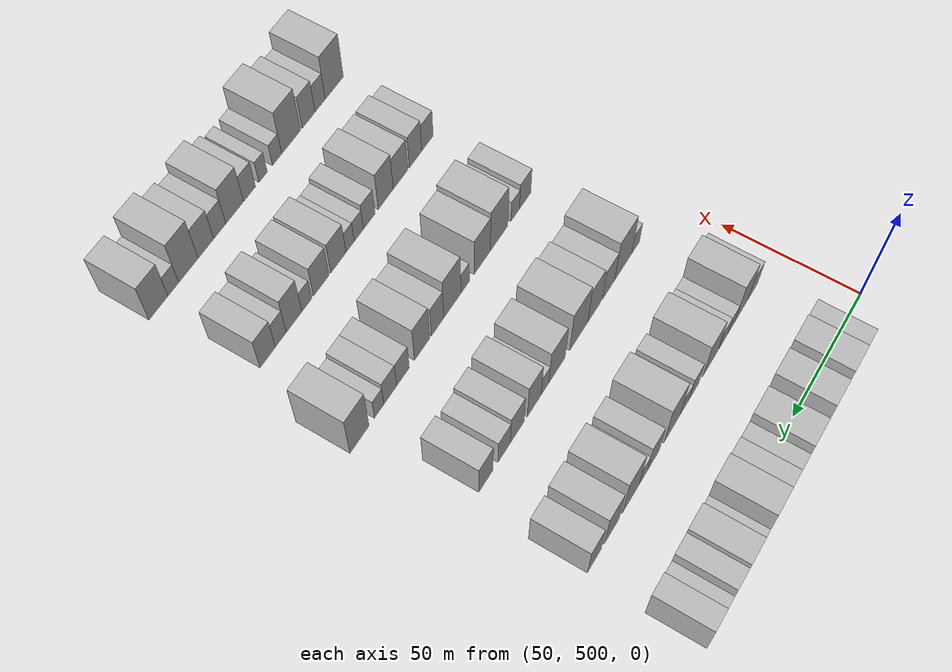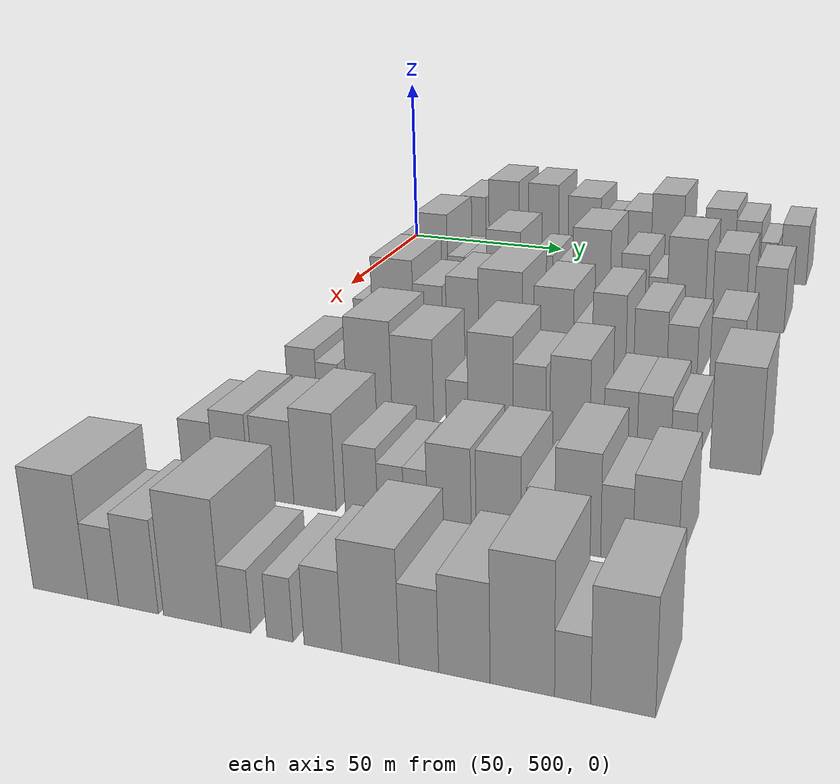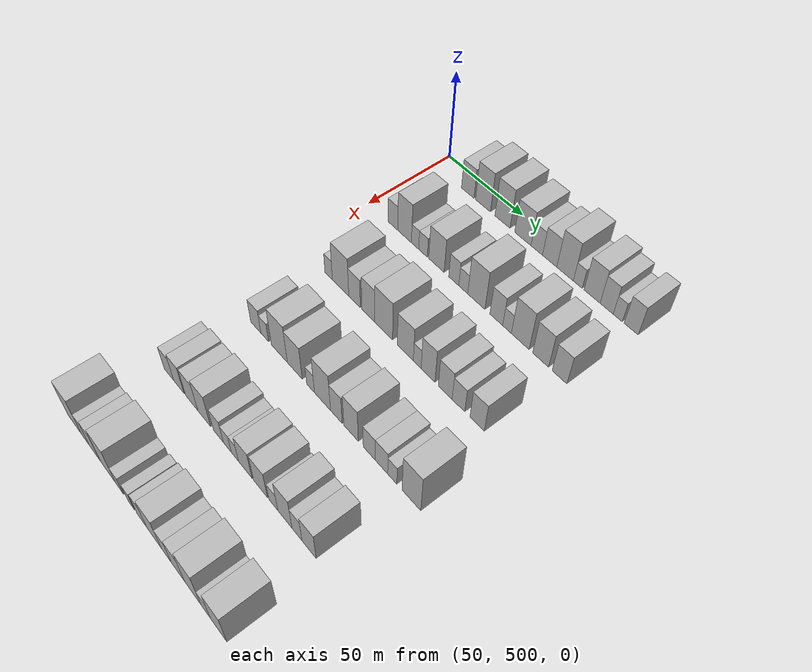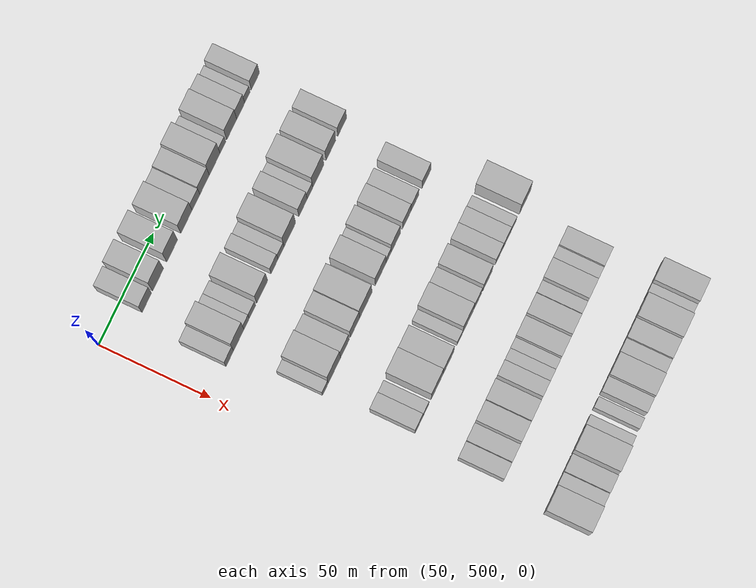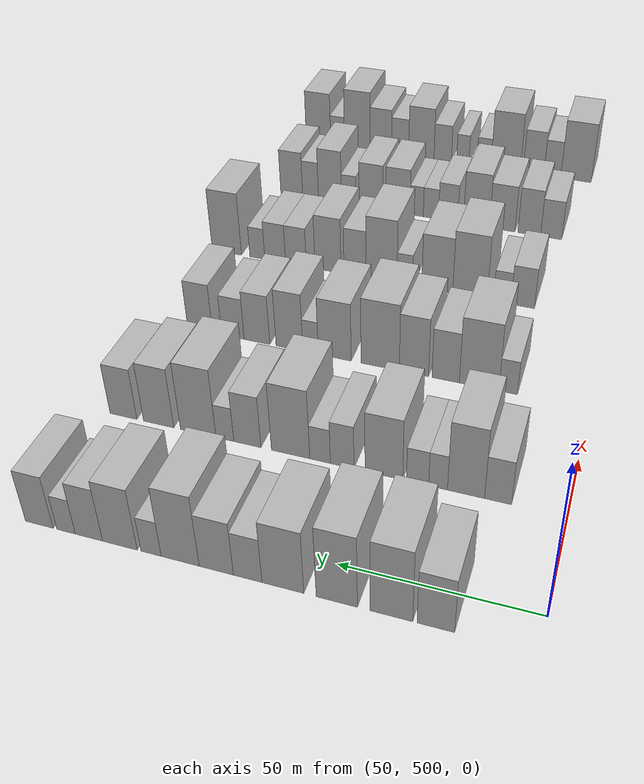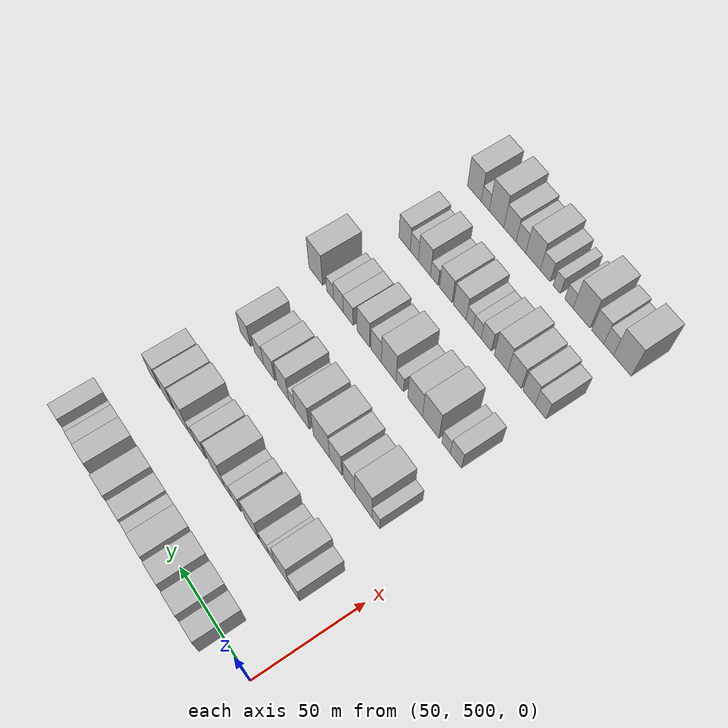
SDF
<sdf version="1.6">
 <world name="default">
  <model name="building_124">
   <static>1</static>
   <pose>50.0000 523.5518 0 0.000000 0.000000 0.000000</pose>
   <link name="link">
    <pose>0 0 9.00 0 0 0</pose>
    <collision name="collision"><geometry><box><size>20.0000 8.6418 18.0000</size></box></geometry></collision>
    <visual name="visual">
     <cast_shadows>0</cast_shadows>
     <geometry><box><size>20.0000 8.6418 18.0000</size></box></geometry>
     <material>
      <script>
       <uri>model://HANNAS_wall/materials/scripts</uri>
       <uri>model://HANNAS_wall/materials/textures</uri>
       <name>vrc/HANNAS_wall</name>
      </script>
     </material>
    </visual>
   </link>
  </model>
  <model name="building_125">
   <static>1</static>
   <pose>50.0000 533.8867 0 0.000000 0.000000 0.000000</pose>
   <link name="link">
    <pose>0 0 12.00 0 0 0</pose>
    <collision name="collision"><geometry><box><size>20.0000 10.0279 24.0000</size></box></geometry></collision>
    <visual name="visual">
     <cast_shadows>0</cast_shadows>
     <geometry><box><size>20.0000 10.0279 24.0000</size></box></geometry>
     <material>
      <script>
       <uri>model://HANNAS_wall/materials/scripts</uri>
       <uri>model://HANNAS_wall/materials/textures</uri>
       <name>vrc/HANNAS_wall</name>
      </script>
     </material>
    </visual>
   </link>
  </model>
  <model name="building_126">
   <static>1</static>
   <pose>50.0000 546.8685 0 0.000000 0.000000 0.000000</pose>
   <link name="link">
    <pose>0 0 12.00 0 0 0</pose>
    <collision name="collision"><geometry><box><size>20.0000 9.9358 24.0000</size></box></geometry></collision>
    <visual name="visual">
     <cast_shadows>0</cast_shadows>
     <geometry><box><size>20.0000 9.9358 24.0000</size></box></geometry>
     <material>
      <script>
       <uri>model://HANNAS_wall/materials/scripts</uri>
       <uri>model://HANNAS_wall/materials/textures</uri>
       <name>vrc/HANNAS_wall</name>
      </script>
     </material>
    </visual>
   </link>
  </model>
  <model name="building_127">
   <static>1</static>
   <pose>50.0000 560.0054 0 0.000000 0.000000 0.000000</pose>
   <link name="link">
    <pose>0 0 10.50 0 0 0</pose>
    <collision name="collision"><geometry><box><size>20.0000 10.3380 21.0000</size></box></geometry></collision>
    <visual name="visual">
     <cast_shadows>0</cast_shadows>
     <geometry><box><size>20.0000 10.3380 21.0000</size></box></geometry>
     <material>
      <script>
       <uri>model://HANNAS_wall/materials/scripts</uri>
       <uri>model://HANNAS_wall/materials/textures</uri>
       <name>vrc/HANNAS_wall</name>
      </script>
     </material>
    </visual>
   </link>
  </model>
  <model name="building_128">
   <static>1</static>
   <pose>50.0000 568.7596 0 0.000000 0.000000 0.000000</pose>
   <link name="link">
    <pose>0 0 7.50 0 0 0</pose>
    <collision name="collision"><geometry><box><size>20.0000 7.1705 15.0000</size></box></geometry></collision>
    <visual name="visual">
     <cast_shadows>0</cast_shadows>
     <geometry><box><size>20.0000 7.1705 15.0000</size></box></geometry>
     <material>
      <script>
       <uri>model://HANNAS_wall/materials/scripts</uri>
       <uri>model://HANNAS_wall/materials/textures</uri>
       <name>vrc/HANNAS_wall</name>
      </script>
     </material>
    </visual>
   </link>
  </model>
  <model name="building_129">
   <static>1</static>
   <pose>50.0000 576.7123 0 0.000000 0.000000 0.000000</pose>
   <link name="link">
    <pose>0 0 9.00 0 0 0</pose>
    <collision name="collision"><geometry><box><size>20.0000 8.7348 18.0000</size></box></geometry></collision>
    <visual name="visual">
     <cast_shadows>0</cast_shadows>
     <geometry><box><size>20.0000 8.7348 18.0000</size></box></geometry>
     <material>
      <script>
       <uri>model://HANNAS_wall/materials/scripts</uri>
       <uri>model://HANNAS_wall/materials/textures</uri>
       <name>vrc/HANNAS_wall</name>
      </script>
     </material>
    </visual>
   </link>
  </model>
  <model name="building_130">
   <static>1</static>
   <pose>50.0000 586.0162 0 0.000000 0.000000 0.000000</pose>
   <link name="link">
    <pose>0 0 12.00 0 0 0</pose>
    <collision name="collision"><geometry><box><size>20.0000 9.8731 24.0000</size></box></geometry></collision>
    <visual name="visual">
     <cast_shadows>0</cast_shadows>
     <geometry><box><size>20.0000 9.8731 24.0000</size></box></geometry>
     <material>
      <script>
       <uri>model://HANNAS_wall/materials/scripts</uri>
       <uri>model://HANNAS_wall/materials/textures</uri>
       <name>vrc/HANNAS_wall</name>
      </script>
     </material>
    </visual>
   </link>
  </model>
  <model name="building_131">
   <static>1</static>
   <pose>50.0000 593.5999 0 0.000000 0.000000 0.000000</pose>
   <link name="link">
    <pose>0 0 6.00 0 0 0</pose>
    <collision name="collision"><geometry><box><size>20.0000 5.2944 12.0000</size></box></geometry></collision>
    <visual name="visual">
     <cast_shadows>0</cast_shadows>
     <geometry><box><size>20.0000 5.2944 12.0000</size></box></geometry>
     <material>
      <script>
       <uri>model://HANNAS_wall/materials/scripts</uri>
       <uri>model://HANNAS_wall/materials/textures</uri>
       <name>vrc/HANNAS_wall</name>
      </script>
     </material>
    </visual>
   </link>
  </model>
  <model name="building_132">
   <static>1</static>
   <pose>50.0000 601.8883 0 0.000000 0.000000 0.000000</pose>
   <link name="link">
    <pose>0 0 10.50 0 0 0</pose>
    <collision name="collision"><geometry><box><size>20.0000 9.2823 21.0000</size></box></geometry></collision>
    <visual name="visual">
     <cast_shadows>0</cast_shadows>
     <geometry><box><size>20.0000 9.2823 21.0000</size></box></geometry>
     <material>
      <script>
       <uri>model://HANNAS_wall/materials/scripts</uri>
       <uri>model://HANNAS_wall/materials/textures</uri>
       <name>vrc/HANNAS_wall</name>
      </script>
     </material>
    </visual>
   </link>
  </model>
  <model name="building_133">
   <static>1</static>
   <pose>50.0000 610.2313 0 0.000000 0.000000 0.000000</pose>
   <link name="link">
    <pose>0 0 9.00 0 0 0</pose>
    <collision name="collision"><geometry><box><size>20.0000 7.4037 18.0000</size></box></geometry></collision>
    <visual name="visual">
     <cast_shadows>0</cast_shadows>
     <geometry><box><size>20.0000 7.4037 18.0000</size></box></geometry>
     <material>
      <script>
       <uri>model://HANNAS_wall/materials/scripts</uri>
       <uri>model://HANNAS_wall/materials/textures</uri>
       <name>vrc/HANNAS_wall</name>
      </script>
     </material>
    </visual>
   </link>
  </model>
  <model name="building_134">
   <static>1</static>
   <pose>50.0000 616.4657 0 0.000000 0.000000 0.000000</pose>
   <link name="link">
    <pose>0 0 6.00 0 0 0</pose>
    <collision name="collision"><geometry><box><size>20.0000 5.0651 12.0000</size></box></geometry></collision>
    <visual name="visual">
     <cast_shadows>0</cast_shadows>
     <geometry><box><size>20.0000 5.0651 12.0000</size></box></geometry>
     <material>
      <script>
       <uri>model://HANNAS_wall/materials/scripts</uri>
       <uri>model://HANNAS_wall/materials/textures</uri>
       <name>vrc/HANNAS_wall</name>
      </script>
     </material>
    </visual>
   </link>
  </model>
  <model name="building_135">
   <static>1</static>
   <pose>50.0000 623.8466 0 0.000000 0.000000 0.000000</pose>
   <link name="link">
    <pose>0 0 9.00 0 0 0</pose>
    <collision name="collision"><geometry><box><size>20.0000 7.6967 18.0000</size></box></geometry></collision>
    <visual name="visual">
     <cast_shadows>0</cast_shadows>
     <geometry><box><size>20.0000 7.6967 18.0000</size></box></geometry>
     <material>
      <script>
       <uri>model://HANNAS_wall/materials/scripts</uri>
       <uri>model://HANNAS_wall/materials/textures</uri>
       <name>vrc/HANNAS_wall</name>
      </script>
     </material>
    </visual>
   </link>
  </model>
  <model name="building_258">
   <static>1</static>
   <pose>90.0000 517.5387 0 0.000000 0.000000 0.000000</pose>
   <link name="link">
    <pose>0 0 7.50 0 0 0</pose>
    <collision name="collision"><geometry><box><size>20.0000 6.9178 15.0000</size></box></geometry></collision>
    <visual name="visual">
     <cast_shadows>0</cast_shadows>
     <geometry><box><size>20.0000 6.9178 15.0000</size></box></geometry>
     <material>
      <script>
       <uri>model://HANNAS_wall/materials/scripts</uri>
       <uri>model://HANNAS_wall/materials/textures</uri>
       <name>vrc/HANNAS_wall</name>
      </script>
     </material>
    </visual>
   </link>
  </model>
  <model name="building_259">
   <static>1</static>
   <pose>90.0000 525.7978 0 0.000000 0.000000 0.000000</pose>
   <link name="link">
    <pose>0 0 12.00 0 0 0</pose>
    <collision name="collision"><geometry><box><size>20.0000 9.6003 24.0000</size></box></geometry></collision>
    <visual name="visual">
     <cast_shadows>0</cast_shadows>
     <geometry><box><size>20.0000 9.6003 24.0000</size></box></geometry>
     <material>
      <script>
       <uri>model://HANNAS_wall/materials/scripts</uri>
       <uri>model://HANNAS_wall/materials/textures</uri>
       <name>vrc/HANNAS_wall</name>
      </script>
     </material>
    </visual>
   </link>
  </model>
  <model name="building_260">
   <static>1</static>
   <pose>90.0000 533.0610 0 0.000000 0.000000 0.000000</pose>
   <link name="link">
    <pose>0 0 6.00 0 0 0</pose>
    <collision name="collision"><geometry><box><size>20.0000 4.9261 12.0000</size></box></geometry></collision>
    <visual name="visual">
     <cast_shadows>0</cast_shadows>
     <geometry><box><size>20.0000 4.9261 12.0000</size></box></geometry>
     <material>
      <script>
       <uri>model://HANNAS_wall/materials/scripts</uri>
       <uri>model://HANNAS_wall/materials/textures</uri>
       <name>vrc/HANNAS_wall</name>
      </script>
     </material>
    </visual>
   </link>
  </model>
  <model name="building_261">
   <static>1</static>
   <pose>90.0000 538.4622 0 0.000000 0.000000 0.000000</pose>
   <link name="link">
    <pose>0 0 6.00 0 0 0</pose>
    <collision name="collision"><geometry><box><size>20.0000 5.8763 12.0000</size></box></geometry></collision>
    <visual name="visual">
     <cast_shadows>0</cast_shadows>
     <geometry><box><size>20.0000 5.8763 12.0000</size></box></geometry>
     <material>
      <script>
       <uri>model://HANNAS_wall/materials/scripts</uri>
       <uri>model://HANNAS_wall/materials/textures</uri>
       <name>vrc/HANNAS_wall</name>
      </script>
     </material>
    </visual>
   </link>
  </model>
  <model name="building_262">
   <static>1</static>
   <pose>90.0000 547.4656 0 0.000000 0.000000 0.000000</pose>
   <link name="link">
    <pose>0 0 10.50 0 0 0</pose>
    <collision name="collision"><geometry><box><size>20.0000 10.1305 21.0000</size></box></geometry></collision>
    <visual name="visual">
     <cast_shadows>0</cast_shadows>
     <geometry><box><size>20.0000 10.1305 21.0000</size></box></geometry>
     <material>
      <script>
       <uri>model://HANNAS_wall/materials/scripts</uri>
       <uri>model://HANNAS_wall/materials/textures</uri>
       <name>vrc/HANNAS_wall</name>
      </script>
     </material>
    </visual>
   </link>
  </model>
  <model name="building_263">
   <static>1</static>
   <pose>90.0000 558.7692 0 0.000000 0.000000 0.000000</pose>
   <link name="link">
    <pose>0 0 7.50 0 0 0</pose>
    <collision name="collision"><geometry><box><size>20.0000 6.4766 15.0000</size></box></geometry></collision>
    <visual name="visual">
     <cast_shadows>0</cast_shadows>
     <geometry><box><size>20.0000 6.4766 15.0000</size></box></geometry>
     <material>
      <script>
       <uri>model://HANNAS_wall/materials/scripts</uri>
       <uri>model://HANNAS_wall/materials/textures</uri>
       <name>vrc/HANNAS_wall</name>
      </script>
     </material>
    </visual>
   </link>
  </model>
  <model name="building_264">
   <static>1</static>
   <pose>90.0000 564.8663 0 0.000000 0.000000 0.000000</pose>
   <link name="link">
    <pose>0 0 6.00 0 0 0</pose>
    <collision name="collision"><geometry><box><size>20.0000 5.7176 12.0000</size></box></geometry></collision>
    <visual name="visual">
     <cast_shadows>0</cast_shadows>
     <geometry><box><size>20.0000 5.7176 12.0000</size></box></geometry>
     <material>
      <script>
       <uri>model://HANNAS_wall/materials/scripts</uri>
       <uri>model://HANNAS_wall/materials/textures</uri>
       <name>vrc/HANNAS_wall</name>
      </script>
     </material>
    </visual>
   </link>
  </model>
  <model name="building_265">
   <static>1</static>
   <pose>90.0000 573.0995 0 0.000000 0.000000 0.000000</pose>
   <link name="link">
    <pose>0 0 12.00 0 0 0</pose>
    <collision name="collision"><geometry><box><size>20.0000 10.7489 24.0000</size></box></geometry></collision>
    <visual name="visual">
     <cast_shadows>0</cast_shadows>
     <geometry><box><size>20.0000 10.7489 24.0000</size></box></geometry>
     <material>
      <script>
       <uri>model://HANNAS_wall/materials/scripts</uri>
       <uri>model://HANNAS_wall/materials/textures</uri>
       <name>vrc/HANNAS_wall</name>
      </script>
     </material>
    </visual>
   </link>
  </model>
  <model name="building_266">
   <static>1</static>
   <pose>90.0000 585.3568 0 0.000000 0.000000 0.000000</pose>
   <link name="link">
    <pose>0 0 9.00 0 0 0</pose>
    <collision name="collision"><geometry><box><size>20.0000 7.7658 18.0000</size></box></geometry></collision>
    <visual name="visual">
     <cast_shadows>0</cast_shadows>
     <geometry><box><size>20.0000 7.7658 18.0000</size></box></geometry>
     <material>
      <script>
       <uri>model://HANNAS_wall/materials/scripts</uri>
       <uri>model://HANNAS_wall/materials/textures</uri>
       <name>vrc/HANNAS_wall</name>
      </script>
     </material>
    </visual>
   </link>
  </model>
  <model name="building_267">
   <static>1</static>
   <pose>90.0000 591.8320 0 0.000000 0.000000 0.000000</pose>
   <link name="link">
    <pose>0 0 6.00 0 0 0</pose>
    <collision name="collision"><geometry><box><size>20.0000 5.1846 12.0000</size></box></geometry></collision>
    <visual name="visual">
     <cast_shadows>0</cast_shadows>
     <geometry><box><size>20.0000 5.1846 12.0000</size></box></geometry>
     <material>
      <script>
       <uri>model://HANNAS_wall/materials/scripts</uri>
       <uri>model://HANNAS_wall/materials/textures</uri>
       <name>vrc/HANNAS_wall</name>
      </script>
     </material>
    </visual>
   </link>
  </model>
  <model name="building_268">
   <static>1</static>
   <pose>90.0000 599.6301 0 0.000000 0.000000 0.000000</pose>
   <link name="link">
    <pose>0 0 12.00 0 0 0</pose>
    <collision name="collision"><geometry><box><size>20.0000 10.4115 24.0000</size></box></geometry></collision>
    <visual name="visual">
     <cast_shadows>0</cast_shadows>
     <geometry><box><size>20.0000 10.4115 24.0000</size></box></geometry>
     <material>
      <script>
       <uri>model://HANNAS_wall/materials/scripts</uri>
       <uri>model://HANNAS_wall/materials/textures</uri>
       <name>vrc/HANNAS_wall</name>
      </script>
     </material>
    </visual>
   </link>
  </model>
  <model name="building_269">
   <static>1</static>
   <pose>90.0000 611.3605 0 0.000000 0.000000 0.000000</pose>
   <link name="link">
    <pose>0 0 10.50 0 0 0</pose>
    <collision name="collision"><geometry><box><size>20.0000 9.0493 21.0000</size></box></geometry></collision>
    <visual name="visual">
     <cast_shadows>0</cast_shadows>
     <geometry><box><size>20.0000 9.0493 21.0000</size></box></geometry>
     <material>
      <script>
       <uri>model://HANNAS_wall/materials/scripts</uri>
       <uri>model://HANNAS_wall/materials/textures</uri>
       <name>vrc/HANNAS_wall</name>
      </script>
     </material>
    </visual>
   </link>
  </model>
  <model name="building_270">
   <static>1</static>
   <pose>90.0000 621.9756 0 0.000000 0.000000 0.000000</pose>
   <link name="link">
    <pose>0 0 9.00 0 0 0</pose>
    <collision name="collision"><geometry><box><size>20.0000 8.1807 18.0000</size></box></geometry></collision>
    <visual name="visual">
     <cast_shadows>0</cast_shadows>
     <geometry><box><size>20.0000 8.1807 18.0000</size></box></geometry>
     <material>
      <script>
       <uri>model://HANNAS_wall/materials/scripts</uri>
       <uri>model://HANNAS_wall/materials/textures</uri>
       <name>vrc/HANNAS_wall</name>
      </script>
     </material>
    </visual>
   </link>
  </model>
  <model name="building_391">
   <static>1</static>
   <pose>130.0000 522.7480 0 0.000000 0.000000 0.000000</pose>
   <link name="link">
    <pose>0 0 6.00 0 0 0</pose>
    <collision name="collision"><geometry><box><size>20.0000 5.3081 12.0000</size></box></geometry></collision>
    <visual name="visual">
     <cast_shadows>0</cast_shadows>
     <geometry><box><size>20.0000 5.3081 12.0000</size></box></geometry>
     <material>
      <script>
       <uri>model://HANNAS_wall/materials/scripts</uri>
       <uri>model://HANNAS_wall/materials/textures</uri>
       <name>vrc/HANNAS_wall</name>
      </script>
     </material>
    </visual>
   </link>
  </model>
  <model name="building_392">
   <static>1</static>
   <pose>130.0000 531.1420 0 0.000000 0.000000 0.000000</pose>
   <link name="link">
    <pose>0 0 12.00 0 0 0</pose>
    <collision name="collision"><geometry><box><size>20.0000 11.4799 24.0000</size></box></geometry></collision>
    <visual name="visual">
     <cast_shadows>0</cast_shadows>
     <geometry><box><size>20.0000 11.4799 24.0000</size></box></geometry>
     <material>
      <script>
       <uri>model://HANNAS_wall/materials/scripts</uri>
       <uri>model://HANNAS_wall/materials/textures</uri>
       <name>vrc/HANNAS_wall</name>
      </script>
     </material>
    </visual>
   </link>
  </model>
  <model name="building_393">
   <static>1</static>
   <pose>130.0000 540.8889 0 0.000000 0.000000 0.000000</pose>
   <link name="link">
    <pose>0 0 9.00 0 0 0</pose>
    <collision name="collision"><geometry><box><size>20.0000 8.0139 18.0000</size></box></geometry></collision>
    <visual name="visual">
     <cast_shadows>0</cast_shadows>
     <geometry><box><size>20.0000 8.0139 18.0000</size></box></geometry>
     <material>
      <script>
       <uri>model://HANNAS_wall/materials/scripts</uri>
       <uri>model://HANNAS_wall/materials/textures</uri>
       <name>vrc/HANNAS_wall</name>
      </script>
     </material>
    </visual>
   </link>
  </model>
  <model name="building_394">
   <static>1</static>
   <pose>130.0000 550.2425 0 0.000000 0.000000 0.000000</pose>
   <link name="link">
    <pose>0 0 10.50 0 0 0</pose>
    <collision name="collision"><geometry><box><size>20.0000 8.6933 21.0000</size></box></geometry></collision>
    <visual name="visual">
     <cast_shadows>0</cast_shadows>
     <geometry><box><size>20.0000 8.6933 21.0000</size></box></geometry>
     <material>
      <script>
       <uri>model://HANNAS_wall/materials/scripts</uri>
       <uri>model://HANNAS_wall/materials/textures</uri>
       <name>vrc/HANNAS_wall</name>
      </script>
     </material>
    </visual>
   </link>
  </model>
  <model name="building_395">
   <static>1</static>
   <pose>130.0000 560.3969 0 0.000000 0.000000 0.000000</pose>
   <link name="link">
    <pose>0 0 12.00 0 0 0</pose>
    <collision name="collision"><geometry><box><size>20.0000 11.6155 24.0000</size></box></geometry></collision>
    <visual name="visual">
     <cast_shadows>0</cast_shadows>
     <geometry><box><size>20.0000 11.6155 24.0000</size></box></geometry>
     <material>
      <script>
       <uri>model://HANNAS_wall/materials/scripts</uri>
       <uri>model://HANNAS_wall/materials/textures</uri>
       <name>vrc/HANNAS_wall</name>
      </script>
     </material>
    </visual>
   </link>
  </model>
  <model name="building_396">
   <static>1</static>
   <pose>130.0000 574.2930 0 0.000000 0.000000 0.000000</pose>
   <link name="link">
    <pose>0 0 10.50 0 0 0</pose>
    <collision name="collision"><geometry><box><size>20.0000 10.1767 21.0000</size></box></geometry></collision>
    <visual name="visual">
     <cast_shadows>0</cast_shadows>
     <geometry><box><size>20.0000 10.1767 21.0000</size></box></geometry>
     <material>
      <script>
       <uri>model://HANNAS_wall/materials/scripts</uri>
       <uri>model://HANNAS_wall/materials/textures</uri>
       <name>vrc/HANNAS_wall</name>
      </script>
     </material>
    </visual>
   </link>
  </model>
  <model name="building_397">
   <static>1</static>
   <pose>130.0000 581.7893 0 0.000000 0.000000 0.000000</pose>
   <link name="link">
    <pose>0 0 6.00 0 0 0</pose>
    <collision name="collision"><geometry><box><size>20.0000 4.8159 12.0000</size></box></geometry></collision>
    <visual name="visual">
     <cast_shadows>0</cast_shadows>
     <geometry><box><size>20.0000 4.8159 12.0000</size></box></geometry>
     <material>
      <script>
       <uri>model://HANNAS_wall/materials/scripts</uri>
       <uri>model://HANNAS_wall/materials/textures</uri>
       <name>vrc/HANNAS_wall</name>
      </script>
     </material>
    </visual>
   </link>
  </model>
  <model name="building_398">
   <static>1</static>
   <pose>130.0000 588.4284 0 0.000000 0.000000 0.000000</pose>
   <link name="link">
    <pose>0 0 10.50 0 0 0</pose>
    <collision name="collision"><geometry><box><size>20.0000 8.4623 21.0000</size></box></geometry></collision>
    <visual name="visual">
     <cast_shadows>0</cast_shadows>
     <geometry><box><size>20.0000 8.4623 21.0000</size></box></geometry>
     <material>
      <script>
       <uri>model://HANNAS_wall/materials/scripts</uri>
       <uri>model://HANNAS_wall/materials/textures</uri>
       <name>vrc/HANNAS_wall</name>
      </script>
     </material>
    </visual>
   </link>
  </model>
  <model name="building_399">
   <static>1</static>
   <pose>130.0000 598.7714 0 0.000000 0.000000 0.000000</pose>
   <link name="link">
    <pose>0 0 9.00 0 0 0</pose>
    <collision name="collision"><geometry><box><size>20.0000 8.2238 18.0000</size></box></geometry></collision>
    <visual name="visual">
     <cast_shadows>0</cast_shadows>
     <geometry><box><size>20.0000 8.2238 18.0000</size></box></geometry>
     <material>
      <script>
       <uri>model://HANNAS_wall/materials/scripts</uri>
       <uri>model://HANNAS_wall/materials/textures</uri>
       <name>vrc/HANNAS_wall</name>
      </script>
     </material>
    </visual>
   </link>
  </model>
  <model name="building_400">
   <static>1</static>
   <pose>130.0000 606.5323 0 0.000000 0.000000 0.000000</pose>
   <link name="link">
    <pose>0 0 7.50 0 0 0</pose>
    <collision name="collision"><geometry><box><size>20.0000 7.2980 15.0000</size></box></geometry></collision>
    <visual name="visual">
     <cast_shadows>0</cast_shadows>
     <geometry><box><size>20.0000 7.2980 15.0000</size></box></geometry>
     <material>
      <script>
       <uri>model://HANNAS_wall/materials/scripts</uri>
       <uri>model://HANNAS_wall/materials/textures</uri>
       <name>vrc/HANNAS_wall</name>
      </script>
     </material>
    </visual>
   </link>
  </model>
  <model name="building_401">
   <static>1</static>
   <pose>130.0000 617.2551 0 0.000000 0.000000 0.000000</pose>
   <link name="link">
    <pose>0 0 9.00 0 0 0</pose>
    <collision name="collision"><geometry><box><size>20.0000 8.1475 18.0000</size></box></geometry></collision>
    <visual name="visual">
     <cast_shadows>0</cast_shadows>
     <geometry><box><size>20.0000 8.1475 18.0000</size></box></geometry>
     <material>
      <script>
       <uri>model://HANNAS_wall/materials/scripts</uri>
       <uri>model://HANNAS_wall/materials/textures</uri>
       <name>vrc/HANNAS_wall</name>
      </script>
     </material>
    </visual>
   </link>
  </model>
  <model name="building_534">
   <static>1</static>
   <pose>170.0000 525.9472 0 0.000000 0.000000 0.000000</pose>
   <link name="link">
    <pose>0 0 7.50 0 0 0</pose>
    <collision name="collision"><geometry><box><size>20.0000 7.3963 15.0000</size></box></geometry></collision>
    <visual name="visual">
     <cast_shadows>0</cast_shadows>
     <geometry><box><size>20.0000 7.3963 15.0000</size></box></geometry>
     <material>
      <script>
       <uri>model://HANNAS_wall/materials/scripts</uri>
       <uri>model://HANNAS_wall/materials/textures</uri>
       <name>vrc/HANNAS_wall</name>
      </script>
     </material>
    </visual>
   </link>
  </model>
  <model name="building_535">
   <static>1</static>
   <pose>170.0000 532.4220 0 0.000000 0.000000 0.000000</pose>
   <link name="link">
    <pose>0 0 6.00 0 0 0</pose>
    <collision name="collision"><geometry><box><size>20.0000 5.5531 12.0000</size></box></geometry></collision>
    <visual name="visual">
     <cast_shadows>0</cast_shadows>
     <geometry><box><size>20.0000 5.5531 12.0000</size></box></geometry>
     <material>
      <script>
       <uri>model://HANNAS_wall/materials/scripts</uri>
       <uri>model://HANNAS_wall/materials/textures</uri>
       <name>vrc/HANNAS_wall</name>
      </script>
     </material>
    </visual>
   </link>
  </model>
  <model name="building_536">
   <static>1</static>
   <pose>170.0000 542.7802 0 0.000000 0.000000 0.000000</pose>
   <link name="link">
    <pose>0 0 12.00 0 0 0</pose>
    <collision name="collision"><geometry><box><size>20.0000 11.1633 24.0000</size></box></geometry></collision>
    <visual name="visual">
     <cast_shadows>0</cast_shadows>
     <geometry><box><size>20.0000 11.1633 24.0000</size></box></geometry>
     <material>
      <script>
       <uri>model://HANNAS_wall/materials/scripts</uri>
       <uri>model://HANNAS_wall/materials/textures</uri>
       <name>vrc/HANNAS_wall</name>
      </script>
     </material>
    </visual>
   </link>
  </model>
  <model name="building_537">
   <static>1</static>
   <pose>170.0000 553.4217 0 0.000000 0.000000 0.000000</pose>
   <link name="link">
    <pose>0 0 10.50 0 0 0</pose>
    <collision name="collision"><geometry><box><size>20.0000 10.1198 21.0000</size></box></geometry></collision>
    <visual name="visual">
     <cast_shadows>0</cast_shadows>
     <geometry><box><size>20.0000 10.1198 21.0000</size></box></geometry>
     <material>
      <script>
       <uri>model://HANNAS_wall/materials/scripts</uri>
       <uri>model://HANNAS_wall/materials/textures</uri>
       <name>vrc/HANNAS_wall</name>
      </script>
     </material>
    </visual>
   </link>
  </model>
  <model name="building_538">
   <static>1</static>
   <pose>170.0000 564.0780 0 0.000000 0.000000 0.000000</pose>
   <link name="link">
    <pose>0 0 6.00 0 0 0</pose>
    <collision name="collision"><geometry><box><size>20.0000 5.1929 12.0000</size></box></geometry></collision>
    <visual name="visual">
     <cast_shadows>0</cast_shadows>
     <geometry><box><size>20.0000 5.1929 12.0000</size></box></geometry>
     <material>
      <script>
       <uri>model://HANNAS_wall/materials/scripts</uri>
       <uri>model://HANNAS_wall/materials/textures</uri>
       <name>vrc/HANNAS_wall</name>
      </script>
     </material>
    </visual>
   </link>
  </model>
  <model name="building_539">
   <static>1</static>
   <pose>170.0000 571.8973 0 0.000000 0.000000 0.000000</pose>
   <link name="link">
    <pose>0 0 12.00 0 0 0</pose>
    <collision name="collision"><geometry><box><size>20.0000 10.4457 24.0000</size></box></geometry></collision>
    <visual name="visual">
     <cast_shadows>0</cast_shadows>
     <geometry><box><size>20.0000 10.4457 24.0000</size></box></geometry>
     <material>
      <script>
       <uri>model://HANNAS_wall/materials/scripts</uri>
       <uri>model://HANNAS_wall/materials/textures</uri>
       <name>vrc/HANNAS_wall</name>
      </script>
     </material>
    </visual>
   </link>
  </model>
  <model name="building_540">
   <static>1</static>
   <pose>170.0000 580.8460 0 0.000000 0.000000 0.000000</pose>
   <link name="link">
    <pose>0 0 9.00 0 0 0</pose>
    <collision name="collision"><geometry><box><size>20.0000 7.4516 18.0000</size></box></geometry></collision>
    <visual name="visual">
     <cast_shadows>0</cast_shadows>
     <geometry><box><size>20.0000 7.4516 18.0000</size></box></geometry>
     <material>
      <script>
       <uri>model://HANNAS_wall/materials/scripts</uri>
       <uri>model://HANNAS_wall/materials/textures</uri>
       <name>vrc/HANNAS_wall</name>
      </script>
     </material>
    </visual>
   </link>
  </model>
  <model name="building_541">
   <static>1</static>
   <pose>170.0000 590.0557 0 0.000000 0.000000 0.000000</pose>
   <link name="link">
    <pose>0 0 10.50 0 0 0</pose>
    <collision name="collision"><geometry><box><size>20.0000 8.9678 21.0000</size></box></geometry></collision>
    <visual name="visual">
     <cast_shadows>0</cast_shadows>
     <geometry><box><size>20.0000 8.9678 21.0000</size></box></geometry>
     <material>
      <script>
       <uri>model://HANNAS_wall/materials/scripts</uri>
       <uri>model://HANNAS_wall/materials/textures</uri>
       <name>vrc/HANNAS_wall</name>
      </script>
     </material>
    </visual>
   </link>
  </model>
  <model name="building_542">
   <static>1</static>
   <pose>170.0000 601.1936 0 0.000000 0.000000 0.000000</pose>
   <link name="link">
    <pose>0 0 7.50 0 0 0</pose>
    <collision name="collision"><geometry><box><size>20.0000 7.3081 15.0000</size></box></geometry></collision>
    <visual name="visual">
     <cast_shadows>0</cast_shadows>
     <geometry><box><size>20.0000 7.3081 15.0000</size></box></geometry>
     <material>
      <script>
       <uri>model://HANNAS_wall/materials/scripts</uri>
       <uri>model://HANNAS_wall/materials/textures</uri>
       <name>vrc/HANNAS_wall</name>
      </script>
     </material>
    </visual>
   </link>
  </model>
  <model name="building_543">
   <static>1</static>
   <pose>170.0000 608.5059 0 0.000000 0.000000 0.000000</pose>
   <link name="link">
    <pose>0 0 7.50 0 0 0</pose>
    <collision name="collision"><geometry><box><size>20.0000 7.3166 15.0000</size></box></geometry></collision>
    <visual name="visual">
     <cast_shadows>0</cast_shadows>
     <geometry><box><size>20.0000 7.3166 15.0000</size></box></geometry>
     <material>
      <script>
       <uri>model://HANNAS_wall/materials/scripts</uri>
       <uri>model://HANNAS_wall/materials/textures</uri>
       <name>vrc/HANNAS_wall</name>
      </script>
     </material>
    </visual>
   </link>
  </model>
  <model name="building_544">
   <static>1</static>
   <pose>170.0000 614.8146 0 0.000000 0.000000 0.000000</pose>
   <link name="link">
    <pose>0 0 6.00 0 0 0</pose>
    <collision name="collision"><geometry><box><size>20.0000 5.3008 12.0000</size></box></geometry></collision>
    <visual name="visual">
     <cast_shadows>0</cast_shadows>
     <geometry><box><size>20.0000 5.3008 12.0000</size></box></geometry>
     <material>
      <script>
       <uri>model://HANNAS_wall/materials/scripts</uri>
       <uri>model://HANNAS_wall/materials/textures</uri>
       <name>vrc/HANNAS_wall</name>
      </script>
     </material>
    </visual>
   </link>
  </model>
  <model name="building_545">
   <static>1</static>
   <pose>170.0000 625.7361 0 0.000000 0.000000 0.000000</pose>
   <link name="link">
    <pose>0 0 12.00 0 0 0</pose>
    <collision name="collision"><geometry><box><size>20.0000 10.5423 24.0000</size></box></geometry></collision>
    <visual name="visual">
     <cast_shadows>0</cast_shadows>
     <geometry><box><size>20.0000 10.5423 24.0000</size></box></geometry>
     <material>
      <script>
       <uri>model://HANNAS_wall/materials/scripts</uri>
       <uri>model://HANNAS_wall/materials/textures</uri>
       <name>vrc/HANNAS_wall</name>
      </script>
     </material>
    </visual>
   </link>
  </model>
  <model name="building_669">
   <static>1</static>
   <pose>210.0000 523.4949 0 0.000000 0.000000 0.000000</pose>
   <link name="link">
    <pose>0 0 7.50 0 0 0</pose>
    <collision name="collision"><geometry><box><size>20.0000 7.2532 15.0000</size></box></geometry></collision>
    <visual name="visual">
     <cast_shadows>0</cast_shadows>
     <geometry><box><size>20.0000 7.2532 15.0000</size></box></geometry>
     <material>
      <script>
       <uri>model://HANNAS_wall/materials/scripts</uri>
       <uri>model://HANNAS_wall/materials/textures</uri>
       <name>vrc/HANNAS_wall</name>
      </script>
     </material>
    </visual>
   </link>
  </model>
  <model name="building_670">
   <static>1</static>
   <pose>210.0000 531.0382 0 0.000000 0.000000 0.000000</pose>
   <link name="link">
    <pose>0 0 9.00 0 0 0</pose>
    <collision name="collision"><geometry><box><size>20.0000 7.8333 18.0000</size></box></geometry></collision>
    <visual name="visual">
     <cast_shadows>0</cast_shadows>
     <geometry><box><size>20.0000 7.8333 18.0000</size></box></geometry>
     <material>
      <script>
       <uri>model://HANNAS_wall/materials/scripts</uri>
       <uri>model://HANNAS_wall/materials/textures</uri>
       <name>vrc/HANNAS_wall</name>
      </script>
     </material>
    </visual>
   </link>
  </model>
  <model name="building_671">
   <static>1</static>
   <pose>210.0000 540.4204 0 0.000000 0.000000 0.000000</pose>
   <link name="link">
    <pose>0 0 9.00 0 0 0</pose>
    <collision name="collision"><geometry><box><size>20.0000 8.9312 18.0000</size></box></geometry></collision>
    <visual name="visual">
     <cast_shadows>0</cast_shadows>
     <geometry><box><size>20.0000 8.9312 18.0000</size></box></geometry>
     <material>
      <script>
       <uri>model://HANNAS_wall/materials/scripts</uri>
       <uri>model://HANNAS_wall/materials/textures</uri>
       <name>vrc/HANNAS_wall</name>
      </script>
     </material>
    </visual>
   </link>
  </model>
  <model name="building_672">
   <static>1</static>
   <pose>210.0000 549.4776 0 0.000000 0.000000 0.000000</pose>
   <link name="link">
    <pose>0 0 10.50 0 0 0</pose>
    <collision name="collision"><geometry><box><size>20.0000 9.1833 21.0000</size></box></geometry></collision>
    <visual name="visual">
     <cast_shadows>0</cast_shadows>
     <geometry><box><size>20.0000 9.1833 21.0000</size></box></geometry>
     <material>
      <script>
       <uri>model://HANNAS_wall/materials/scripts</uri>
       <uri>model://HANNAS_wall/materials/textures</uri>
       <name>vrc/HANNAS_wall</name>
      </script>
     </material>
    </visual>
   </link>
  </model>
  <model name="building_673">
   <static>1</static>
   <pose>210.0000 559.5251 0 0.000000 0.000000 0.000000</pose>
   <link name="link">
    <pose>0 0 7.50 0 0 0</pose>
    <collision name="collision"><geometry><box><size>20.0000 6.9117 15.0000</size></box></geometry></collision>
    <visual name="visual">
     <cast_shadows>0</cast_shadows>
     <geometry><box><size>20.0000 6.9117 15.0000</size></box></geometry>
     <material>
      <script>
       <uri>model://HANNAS_wall/materials/scripts</uri>
       <uri>model://HANNAS_wall/materials/textures</uri>
       <name>vrc/HANNAS_wall</name>
      </script>
     </material>
    </visual>
   </link>
  </model>
  <model name="building_674">
   <static>1</static>
   <pose>210.0000 565.7261 0 0.000000 0.000000 0.000000</pose>
   <link name="link">
    <pose>0 0 6.00 0 0 0</pose>
    <collision name="collision"><geometry><box><size>20.0000 5.4904 12.0000</size></box></geometry></collision>
    <visual name="visual">
     <cast_shadows>0</cast_shadows>
     <geometry><box><size>20.0000 5.4904 12.0000</size></box></geometry>
     <material>
      <script>
       <uri>model://HANNAS_wall/materials/scripts</uri>
       <uri>model://HANNAS_wall/materials/textures</uri>
       <name>vrc/HANNAS_wall</name>
      </script>
     </material>
    </visual>
   </link>
  </model>
  <model name="building_675">
   <static>1</static>
   <pose>210.0000 570.8920 0 0.000000 0.000000 0.000000</pose>
   <link name="link">
    <pose>0 0 6.00 0 0 0</pose>
    <collision name="collision"><geometry><box><size>20.0000 4.8414 12.0000</size></box></geometry></collision>
    <visual name="visual">
     <cast_shadows>0</cast_shadows>
     <geometry><box><size>20.0000 4.8414 12.0000</size></box></geometry>
     <material>
      <script>
       <uri>model://HANNAS_wall/materials/scripts</uri>
       <uri>model://HANNAS_wall/materials/textures</uri>
       <name>vrc/HANNAS_wall</name>
      </script>
     </material>
    </visual>
   </link>
  </model>
  <model name="building_676">
   <static>1</static>
   <pose>210.0000 577.7622 0 0.000000 0.000000 0.000000</pose>
   <link name="link">
    <pose>0 0 9.00 0 0 0</pose>
    <collision name="collision"><geometry><box><size>20.0000 8.8990 18.0000</size></box></geometry></collision>
    <visual name="visual">
     <cast_shadows>0</cast_shadows>
     <geometry><box><size>20.0000 8.8990 18.0000</size></box></geometry>
     <material>
      <script>
       <uri>model://HANNAS_wall/materials/scripts</uri>
       <uri>model://HANNAS_wall/materials/textures</uri>
       <name>vrc/HANNAS_wall</name>
      </script>
     </material>
    </visual>
   </link>
  </model>
  <model name="building_677">
   <static>1</static>
   <pose>210.0000 587.6778 0 0.000000 0.000000 0.000000</pose>
   <link name="link">
    <pose>0 0 9.00 0 0 0</pose>
    <collision name="collision"><geometry><box><size>20.0000 8.9322 18.0000</size></box></geometry></collision>
    <visual name="visual">
     <cast_shadows>0</cast_shadows>
     <geometry><box><size>20.0000 8.9322 18.0000</size></box></geometry>
     <material>
      <script>
       <uri>model://HANNAS_wall/materials/scripts</uri>
       <uri>model://HANNAS_wall/materials/textures</uri>
       <name>vrc/HANNAS_wall</name>
      </script>
     </material>
    </visual>
   </link>
  </model>
  <model name="building_678">
   <static>1</static>
   <pose>210.0000 595.9009 0 0.000000 0.000000 0.000000</pose>
   <link name="link">
    <pose>0 0 6.00 0 0 0</pose>
    <collision name="collision"><geometry><box><size>20.0000 5.5139 12.0000</size></box></geometry></collision>
    <visual name="visual">
     <cast_shadows>0</cast_shadows>
     <geometry><box><size>20.0000 5.5139 12.0000</size></box></geometry>
     <material>
      <script>
       <uri>model://HANNAS_wall/materials/scripts</uri>
       <uri>model://HANNAS_wall/materials/textures</uri>
       <name>vrc/HANNAS_wall</name>
      </script>
     </material>
    </visual>
   </link>
  </model>
  <model name="building_679">
   <static>1</static>
   <pose>210.0000 603.0322 0 0.000000 0.000000 0.000000</pose>
   <link name="link">
    <pose>0 0 10.50 0 0 0</pose>
    <collision name="collision"><geometry><box><size>20.0000 8.7487 21.0000</size></box></geometry></collision>
    <visual name="visual">
     <cast_shadows>0</cast_shadows>
     <geometry><box><size>20.0000 8.7487 21.0000</size></box></geometry>
     <material>
      <script>
       <uri>model://HANNAS_wall/materials/scripts</uri>
       <uri>model://HANNAS_wall/materials/textures</uri>
       <name>vrc/HANNAS_wall</name>
      </script>
     </material>
    </visual>
   </link>
  </model>
  <model name="building_680">
   <static>1</static>
   <pose>210.0000 610.4171 0 0.000000 0.000000 0.000000</pose>
   <link name="link">
    <pose>0 0 7.50 0 0 0</pose>
    <collision name="collision"><geometry><box><size>20.0000 6.0213 15.0000</size></box></geometry></collision>
    <visual name="visual">
     <cast_shadows>0</cast_shadows>
     <geometry><box><size>20.0000 6.0213 15.0000</size></box></geometry>
     <material>
      <script>
       <uri>model://HANNAS_wall/materials/scripts</uri>
       <uri>model://HANNAS_wall/materials/textures</uri>
       <name>vrc/HANNAS_wall</name>
      </script>
     </material>
    </visual>
   </link>
  </model>
  <model name="building_681">
   <static>1</static>
   <pose>210.0000 617.6148 0 0.000000 0.000000 0.000000</pose>
   <link name="link">
    <pose>0 0 9.00 0 0 0</pose>
    <collision name="collision"><geometry><box><size>20.0000 8.3739 18.0000</size></box></geometry></collision>
    <visual name="visual">
     <cast_shadows>0</cast_shadows>
     <geometry><box><size>20.0000 8.3739 18.0000</size></box></geometry>
     <material>
      <script>
       <uri>model://HANNAS_wall/materials/scripts</uri>
       <uri>model://HANNAS_wall/materials/textures</uri>
       <name>vrc/HANNAS_wall</name>
      </script>
     </material>
    </visual>
   </link>
  </model>
  <model name="building_801">
   <static>1</static>
   <pose>250.0000 520.7828 0 0.000000 0.000000 0.000000</pose>
   <link name="link">
    <pose>0 0 12.00 0 0 0</pose>
    <collision name="collision"><geometry><box><size>20.0000 11.2357 24.0000</size></box></geometry></collision>
    <visual name="visual">
     <cast_shadows>0</cast_shadows>
     <geometry><box><size>20.0000 11.2357 24.0000</size></box></geometry>
     <material>
      <script>
       <uri>model://HANNAS_wall/materials/scripts</uri>
       <uri>model://HANNAS_wall/materials/textures</uri>
       <name>vrc/HANNAS_wall</name>
      </script>
     </material>
    </visual>
   </link>
  </model>
  <model name="building_802">
   <static>1</static>
   <pose>250.0000 529.5388 0 0.000000 0.000000 0.000000</pose>
   <link name="link">
    <pose>0 0 7.50 0 0 0</pose>
    <collision name="collision"><geometry><box><size>20.0000 6.2764 15.0000</size></box></geometry></collision>
    <visual name="visual">
     <cast_shadows>0</cast_shadows>
     <geometry><box><size>20.0000 6.2764 15.0000</size></box></geometry>
     <material>
      <script>
       <uri>model://HANNAS_wall/materials/scripts</uri>
       <uri>model://HANNAS_wall/materials/textures</uri>
       <name>vrc/HANNAS_wall</name>
      </script>
     </material>
    </visual>
   </link>
  </model>
  <model name="building_803">
   <static>1</static>
   <pose>250.0000 536.5842 0 0.000000 0.000000 0.000000</pose>
   <link name="link">
    <pose>0 0 9.00 0 0 0</pose>
    <collision name="collision"><geometry><box><size>20.0000 7.8142 18.0000</size></box></geometry></collision>
    <visual name="visual">
     <cast_shadows>0</cast_shadows>
     <geometry><box><size>20.0000 7.8142 18.0000</size></box></geometry>
     <material>
      <script>
       <uri>model://HANNAS_wall/materials/scripts</uri>
       <uri>model://HANNAS_wall/materials/textures</uri>
       <name>vrc/HANNAS_wall</name>
      </script>
     </material>
    </visual>
   </link>
  </model>
  <model name="building_804">
   <static>1</static>
   <pose>250.0000 547.0782 0 0.000000 0.000000 0.000000</pose>
   <link name="link">
    <pose>0 0 12.00 0 0 0</pose>
    <collision name="collision"><geometry><box><size>20.0000 11.1739 24.0000</size></box></geometry></collision>
    <visual name="visual">
     <cast_shadows>0</cast_shadows>
     <geometry><box><size>20.0000 11.1739 24.0000</size></box></geometry>
     <material>
      <script>
       <uri>model://HANNAS_wall/materials/scripts</uri>
       <uri>model://HANNAS_wall/materials/textures</uri>
       <name>vrc/HANNAS_wall</name>
      </script>
     </material>
    </visual>
   </link>
  </model>
  <model name="building_805">
   <static>1</static>
   <pose>250.0000 555.4052 0 0.000000 0.000000 0.000000</pose>
   <link name="link">
    <pose>0 0 6.00 0 0 0</pose>
    <collision name="collision"><geometry><box><size>20.0000 5.4799 12.0000</size></box></geometry></collision>
    <visual name="visual">
     <cast_shadows>0</cast_shadows>
     <geometry><box><size>20.0000 5.4799 12.0000</size></box></geometry>
     <material>
      <script>
       <uri>model://HANNAS_wall/materials/scripts</uri>
       <uri>model://HANNAS_wall/materials/textures</uri>
       <name>vrc/HANNAS_wall</name>
      </script>
     </material>
    </visual>
   </link>
  </model>
  <model name="building_806">
   <static>1</static>
   <pose>250.0000 563.5610 0 0.000000 0.000000 0.000000</pose>
   <link name="link">
    <pose>0 0 6.00 0 0 0</pose>
    <collision name="collision"><geometry><box><size>20.0000 4.8318 12.0000</size></box></geometry></collision>
    <visual name="visual">
     <cast_shadows>0</cast_shadows>
     <geometry><box><size>20.0000 4.8318 12.0000</size></box></geometry>
     <material>
      <script>
       <uri>model://HANNAS_wall/materials/scripts</uri>
       <uri>model://HANNAS_wall/materials/textures</uri>
       <name>vrc/HANNAS_wall</name>
      </script>
     </material>
    </visual>
   </link>
  </model>
  <model name="building_807">
   <static>1</static>
   <pose>250.0000 571.3806 0 0.000000 0.000000 0.000000</pose>
   <link name="link">
    <pose>0 0 7.50 0 0 0</pose>
    <collision name="collision"><geometry><box><size>20.0000 6.8073 15.0000</size></box></geometry></collision>
    <visual name="visual">
     <cast_shadows>0</cast_shadows>
     <geometry><box><size>20.0000 6.8073 15.0000</size></box></geometry>
     <material>
      <script>
       <uri>model://HANNAS_wall/materials/scripts</uri>
       <uri>model://HANNAS_wall/materials/textures</uri>
       <name>vrc/HANNAS_wall</name>
      </script>
     </material>
    </visual>
   </link>
  </model>
  <model name="building_808">
   <static>1</static>
   <pose>250.0000 579.7924 0 0.000000 0.000000 0.000000</pose>
   <link name="link">
    <pose>0 0 10.50 0 0 0</pose>
    <collision name="collision"><geometry><box><size>20.0000 10.0164 21.0000</size></box></geometry></collision>
    <visual name="visual">
     <cast_shadows>0</cast_shadows>
     <geometry><box><size>20.0000 10.0164 21.0000</size></box></geometry>
     <material>
      <script>
       <uri>model://HANNAS_wall/materials/scripts</uri>
       <uri>model://HANNAS_wall/materials/textures</uri>
       <name>vrc/HANNAS_wall</name>
      </script>
     </material>
    </visual>
   </link>
  </model>
  <model name="building_809">
   <static>1</static>
   <pose>250.0000 588.1875 0 0.000000 0.000000 0.000000</pose>
   <link name="link">
    <pose>0 0 7.50 0 0 0</pose>
    <collision name="collision"><geometry><box><size>20.0000 6.7736 15.0000</size></box></geometry></collision>
    <visual name="visual">
     <cast_shadows>0</cast_shadows>
     <geometry><box><size>20.0000 6.7736 15.0000</size></box></geometry>
     <material>
      <script>
       <uri>model://HANNAS_wall/materials/scripts</uri>
       <uri>model://HANNAS_wall/materials/textures</uri>
       <name>vrc/HANNAS_wall</name>
      </script>
     </material>
    </visual>
   </link>
  </model>
  <model name="building_810">
   <static>1</static>
   <pose>250.0000 595.8868 0 0.000000 0.000000 0.000000</pose>
   <link name="link">
    <pose>0 0 9.00 0 0 0</pose>
    <collision name="collision"><geometry><box><size>20.0000 8.6251 18.0000</size></box></geometry></collision>
    <visual name="visual">
     <cast_shadows>0</cast_shadows>
     <geometry><box><size>20.0000 8.6251 18.0000</size></box></geometry>
     <material>
      <script>
       <uri>model://HANNAS_wall/materials/scripts</uri>
       <uri>model://HANNAS_wall/materials/textures</uri>
       <name>vrc/HANNAS_wall</name>
      </script>
     </material>
    </visual>
   </link>
  </model>
  <model name="building_811">
   <static>1</static>
   <pose>250.0000 605.4212 0 0.000000 0.000000 0.000000</pose>
   <link name="link">
    <pose>0 0 12.00 0 0 0</pose>
    <collision name="collision"><geometry><box><size>20.0000 10.4437 24.0000</size></box></geometry></collision>
    <visual name="visual">
     <cast_shadows>0</cast_shadows>
     <geometry><box><size>20.0000 10.4437 24.0000</size></box></geometry>
     <material>
      <script>
       <uri>model://HANNAS_wall/materials/scripts</uri>
       <uri>model://HANNAS_wall/materials/textures</uri>
       <name>vrc/HANNAS_wall</name>
      </script>
     </material>
    </visual>
   </link>
  </model>
  <model name="building_812">
   <static>1</static>
   <pose>250.0000 613.5244 0 0.000000 0.000000 0.000000</pose>
   <link name="link">
    <pose>0 0 6.00 0 0 0</pose>
    <collision name="collision"><geometry><box><size>20.0000 5.7628 12.0000</size></box></geometry></collision>
    <visual name="visual">
     <cast_shadows>0</cast_shadows>
     <geometry><box><size>20.0000 5.7628 12.0000</size></box></geometry>
     <material>
      <script>
       <uri>model://HANNAS_wall/materials/scripts</uri>
       <uri>model://HANNAS_wall/materials/textures</uri>
       <name>vrc/HANNAS_wall</name>
      </script>
     </material>
    </visual>
   </link>
  </model>
  <model name="building_813">
   <static>1</static>
   <pose>250.0000 621.4232 0 0.000000 0.000000 0.000000</pose>
   <link name="link">
    <pose>0 0 10.50 0 0 0</pose>
    <collision name="collision"><geometry><box><size>20.0000 10.0347 21.0000</size></box></geometry></collision>
    <visual name="visual">
     <cast_shadows>0</cast_shadows>
     <geometry><box><size>20.0000 10.0347 21.0000</size></box></geometry>
     <material>
      <script>
       <uri>model://HANNAS_wall/materials/scripts</uri>
       <uri>model://HANNAS_wall/materials/textures</uri>
       <name>vrc/HANNAS_wall</name>
      </script>
     </material>
    </visual>
   </link>
  </model>
 </world>
</sdf>
